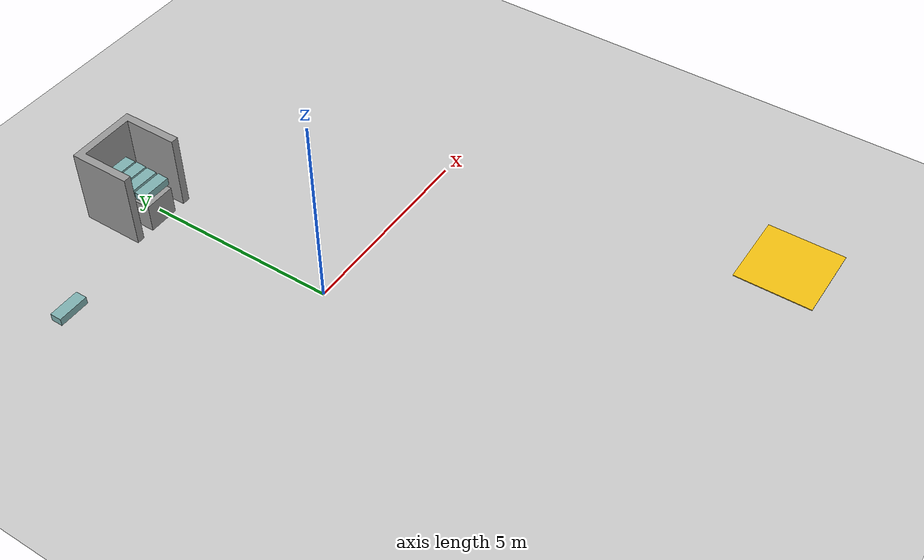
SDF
<sdf version="1.7">
 <world name="default">
  <plugin name="gazebo_link_attacher" filename="libgazebo_link_attacher.so"/>
  <plugin name="gazebo_ros_api_plugin" filename="libgazebo_ros_api_plugin.so"/>
  <plugin name="toggle_link_gravity" filename="libtoggle_link_gravity_plugin.so"/>
  <plugin name="toggle_collision" filename="libtoggle_collision_plugin.so"/>
  <plugin name="gazebo_ros_state" filename="libgazebo_ros_state.so">
   <ros>
    <namespace>/state</namespace>
    <argument>model_states:=model_states</argument>
    <argument>link_states:=link_states</argument>
   </ros>
   <update_rate>1.0</update_rate>
  </plugin>
  <light name="sun" type="directional">
   <pose>0 0 10 0 -0 0</pose>
   <diffuse>0.8 0.8 0.8 1</diffuse>
   <specular>0.2 0.2 0.2 1</specular>
   <attenuation>
    <range>1000</range>
    <constant>0.9</constant>
    <linear>0.01</linear>
    <quadratic>0.001</quadratic>
   </attenuation>
   <direction>-0.5 0.1 -0.9</direction>
   <spot><inner_angle>0</inner_angle><outer_angle>0</outer_angle><falloff>0</falloff></spot>
  </light>
  <model name="ground_plane">
   <static>1</static>
   <link name="link">
    <collision name="collision">
     <geometry><plane><normal>0 0 1</normal><size>100 100</size></plane></geometry>
     <surface>
      <contact><collide_bitmask>65535</collide_bitmask></contact>
      <friction><ode><mu>100</mu><mu2>50</mu2></ode></friction>
     </surface>
    </collision>
    <visual name="visual">
     <cast_shadows>0</cast_shadows>
     <geometry><plane><normal>0 0 1</normal><size>100 100</size></plane></geometry>
     <material>
      <script><uri>file://media/materials/scripts/gazebo.material</uri><name>Gazebo/Grey</name></script>
     </material>
    </visual>
   </link>
  </model>
  <gravity>0 0 -9.8</gravity>
  <magnetic_field>6e-06 2.3e-05 -4.2e-05</magnetic_field>
  <atmosphere type="adiabatic"/>
  <physics type="ode">
   <max_step_size>0.001</max_step_size>
   <real_time_factor>1</real_time_factor>
   <real_time_update_rate>1000</real_time_update_rate>
  </physics>
  <scene><ambient>0.4 0.4 0.4 1</ambient><background>0.7 0.7 0.7 1</background><shadows>1</shadows></scene>
  <audio><device>default</device></audio>
  <spherical_coordinates>
   <surface_model>EARTH_WGS84</surface_model>
   <latitude_deg>0</latitude_deg>
   <longitude_deg>0</longitude_deg>
   <elevation>0</elevation>
   <heading_deg>0</heading_deg>
  </spherical_coordinates>
  <model name="target_plane">
   <link name="link_0">
    <inertial>
     <mass>0.0753756</mass>
     <inertia>
      <ixx>0.0242871</ixx>
      <ixy>0</ixy>
      <ixz>0</ixz>
      <iyy>0.0244094</iyy>
      <iyz>0</iyz>
      <izz>0.0486918</izz>
     </inertia>
    </inertial>
    <visual name="visual">
     <geometry><box><size>1.97121 1.96626 0.019484</size></box></geometry>
     <material>
      <lighting>1</lighting>
      <script><uri>file://media/materials/scripts/gazebo.material</uri><name>Gazebo/Grey</name></script>
      <shader type="pixel"><normal_map>__default__</normal_map></shader>
      <ambient>0.961 0.761 0.067 1</ambient>
      <diffuse>0.961 0.761 0.067 1</diffuse>
      <specular>0.961 0.761 0.067 1</specular>
      <emissive>0.961 0.761 0.067 1</emissive>
     </material>
    </visual>
    <collision name="collision">
     <geometry><box><size>1.97121 1.96626 0.019484</size></box></geometry>
     <surface>
      <friction>
       <ode><mu>1</mu><mu2>1</mu2><fdir1>0 0 0</fdir1><slip1>0</slip1><slip2>0</slip2></ode>
       <torsional>
        <coefficient>1</coefficient>
        <patch_radius>0</patch_radius>
        <surface_radius>0</surface_radius>
        <use_patch_radius>1</use_patch_radius>
        <ode><slip>0</slip></ode>
       </torsional>
      </friction>
      <bounce><restitution_coefficient>0</restitution_coefficient><threshold>1e+06</threshold></bounce>
      <contact>
       <collide_without_contact>0</collide_without_contact>
       <collide_without_contact_bitmask>1</collide_without_contact_bitmask>
       <collide_bitmask>1</collide_bitmask>
       <ode>
        <soft_cfm>0</soft_cfm>
        <soft_erp>0.2</soft_erp>
        <kp>1e+13</kp>
        <kd>1</kd>
        <max_vel>0.01</max_vel>
        <min_depth>0</min_depth>
       </ode>
       <bullet>
        <split_impulse>1</split_impulse>
        <split_impulse_penetration_threshold>-0.01</split_impulse_penetration_threshold>
        <soft_cfm>0</soft_cfm>
        <soft_erp>0.2</soft_erp>
        <kp>1e+13</kp>
        <kd>1</kd>
       </bullet>
      </contact>
     </surface>
    </collision>
   </link>
   <static>1</static>
   <pose>6.58171 -8.56484 0.134058 0 -0 0</pose>
  </model>
  <model name="pacco">
   <link name="link_1">
    <inertial>
     <mass>1</mass>
     <inertia>
      <ixx>0.166667</ixx>
      <ixy>0</ixy>
      <ixz>0</ixz>
      <iyy>0.166667</iyy>
      <iyz>0</iyz>
      <izz>0.166667</izz>
     </inertia>
    </inertial>
    <visual name="visual">
     <geometry>
      <mesh>
       <uri>/ros2_ws/install/ur/share/ur/xacro/./Models/package_800x300x200/package.dae</uri>
       <scale>1 1 1</scale>
      </mesh>
     </geometry>
     <material>
      <lighting>1</lighting>
      <script><uri>file://media/materials/scripts/gazebo.material</uri><name>Gazebo/Grey</name></script>
      <shader type="pixel"><normal_map>__default__</normal_map></shader>
      <ambient>0.6 0 0 0</ambient>
      <diffuse>0.5 0.7 0.7 1</diffuse>
      <specular>0.01 0.01 0.01 1</specular>
      <emissive>0 0 0 1</emissive>
     </material>
    </visual>
    <collision name="collision_1">
     <geometry><box><size>0.8 0.3 0.2</size></box></geometry>
     <surface>
      <friction>
       <ode><mu>1</mu><mu2>1</mu2><fdir1>0 0 0</fdir1><slip1>0</slip1><slip2>0</slip2></ode>
       <torsional>
        <coefficient>1</coefficient>
        <patch_radius>0</patch_radius>
        <surface_radius>0</surface_radius>
        <use_patch_radius>1</use_patch_radius>
        <ode><slip>0</slip></ode>
       </torsional>
      </friction>
      <bounce><restitution_coefficient>0</restitution_coefficient><threshold>1e+06</threshold></bounce>
      <contact>
       <collide_without_contact>0</collide_without_contact>
       <collide_without_contact_bitmask>1</collide_without_contact_bitmask>
       <collide_bitmask>1</collide_bitmask>
       <ode>
        <soft_cfm>0</soft_cfm>
        <soft_erp>0.2</soft_erp>
        <kp>1e+13</kp>
        <kd>1</kd>
        <max_vel>0.01</max_vel>
        <min_depth>0</min_depth>
       </ode>
       <bullet>
        <split_impulse>1</split_impulse>
        <split_impulse_penetration_threshold>-0.01</split_impulse_penetration_threshold>
        <soft_cfm>0</soft_cfm>
        <soft_erp>0.2</soft_erp>
        <kp>1e+13</kp>
        <kd>1</kd>
       </bullet>
      </contact>
     </surface>
    </collision>
   </link>
   <static>0</static>
   <pose>-0.24047 5.20052 0.984316 1e-06 -8e-06 -0.015905</pose>
  </model>
  <model name="pacco_clone">
   <link name="link_1">
    <inertial>
     <mass>1</mass>
     <inertia>
      <ixx>0.166667</ixx>
      <ixy>0</ixy>
      <ixz>0</ixz>
      <iyy>0.166667</iyy>
      <iyz>0</iyz>
      <izz>0.166667</izz>
     </inertia>
    </inertial>
    <visual name="visual">
     <geometry>
      <mesh>
       <uri>/ros2_ws/install/ur/share/ur/xacro/./Models/package_800x300x200/package.dae</uri>
       <scale>1 1 1</scale>
      </mesh>
     </geometry>
     <material>
      <lighting>1</lighting>
      <script><uri>file://media/materials/scripts/gazebo.material</uri><name>Gazebo/Grey</name></script>
      <shader type="pixel"><normal_map>__default__</normal_map></shader>
      <ambient>0.6 0 0 0</ambient>
      <diffuse>0.5 0.7 0.7 1</diffuse>
      <specular>0.01 0.01 0.01 1</specular>
      <emissive>0 0 0 1</emissive>
     </material>
    </visual>
    <collision name="collision_1">
     <geometry><box><size>0.8 0.3 0.2</size></box></geometry>
     <surface>
      <friction>
       <ode><mu>1</mu><mu2>1</mu2><fdir1>0 0 0</fdir1><slip1>0</slip1><slip2>0</slip2></ode>
       <torsional>
        <coefficient>1</coefficient>
        <patch_radius>0</patch_radius>
        <surface_radius>0</surface_radius>
        <use_patch_radius>1</use_patch_radius>
        <ode><slip>0</slip></ode>
       </torsional>
      </friction>
      <bounce><restitution_coefficient>0</restitution_coefficient><threshold>1e+06</threshold></bounce>
      <contact>
       <collide_without_contact>0</collide_without_contact>
       <collide_without_contact_bitmask>1</collide_without_contact_bitmask>
       <collide_bitmask>1</collide_bitmask>
       <ode>
        <soft_cfm>0</soft_cfm>
        <soft_erp>0.2</soft_erp>
        <kp>1e+13</kp>
        <kd>1</kd>
        <max_vel>0.01</max_vel>
        <min_depth>0</min_depth>
       </ode>
       <bullet>
        <split_impulse>1</split_impulse>
        <split_impulse_penetration_threshold>-0.01</split_impulse_penetration_threshold>
        <soft_cfm>0</soft_cfm>
        <soft_erp>0.2</soft_erp>
        <kp>1e+13</kp>
        <kd>1</kd>
       </bullet>
      </contact>
     </surface>
    </collision>
   </link>
   <static>0</static>
   <pose>-0.226039 5.5475 0.984317 1e-06 -6e-06 -0.020432</pose>
  </model>
  <model name="pacco_clone_0">
   <link name="link_1">
    <inertial>
     <mass>1</mass>
     <inertia>
      <ixx>0.166667</ixx>
      <ixy>0</ixy>
      <ixz>0</ixz>
      <iyy>0.166667</iyy>
      <iyz>0</iyz>
      <izz>0.166667</izz>
     </inertia>
    </inertial>
    <visual name="visual">
     <geometry>
      <mesh>
       <uri>/ros2_ws/install/ur/share/ur/xacro/./Models/package_800x300x200/package.dae</uri>
       <scale>1 1 1</scale>
      </mesh>
     </geometry>
     <material>
      <lighting>1</lighting>
      <script><uri>file://media/materials/scripts/gazebo.material</uri><name>Gazebo/Grey</name></script>
      <shader type="pixel"><normal_map>__default__</normal_map></shader>
      <ambient>0.6 0 0 0</ambient>
      <diffuse>0.5 0.7 0.7 1</diffuse>
      <specular>0.01 0.01 0.01 1</specular>
      <emissive>0 0 0 1</emissive>
     </material>
    </visual>
    <collision name="collision_1">
     <geometry><box><size>0.8 0.3 0.2</size></box></geometry>
     <surface>
      <friction>
       <ode><mu>1</mu><mu2>1</mu2><fdir1>0 0 0</fdir1><slip1>0</slip1><slip2>0</slip2></ode>
       <torsional>
        <coefficient>1</coefficient>
        <patch_radius>0</patch_radius>
        <surface_radius>0</surface_radius>
        <use_patch_radius>1</use_patch_radius>
        <ode><slip>0</slip></ode>
       </torsional>
      </friction>
      <bounce><restitution_coefficient>0</restitution_coefficient><threshold>1e+06</threshold></bounce>
      <contact>
       <collide_without_contact>0</collide_without_contact>
       <collide_without_contact_bitmask>1</collide_without_contact_bitmask>
       <collide_bitmask>1</collide_bitmask>
       <ode>
        <soft_cfm>0</soft_cfm>
        <soft_erp>0.2</soft_erp>
        <kp>1e+13</kp>
        <kd>1</kd>
        <max_vel>0.01</max_vel>
        <min_depth>0</min_depth>
       </ode>
       <bullet>
        <split_impulse>1</split_impulse>
        <split_impulse_penetration_threshold>-0.01</split_impulse_penetration_threshold>
        <soft_cfm>0</soft_cfm>
        <soft_erp>0.2</soft_erp>
        <kp>1e+13</kp>
        <kd>1</kd>
       </bullet>
      </contact>
     </surface>
    </collision>
   </link>
   <static>0</static>
   <pose>-0.231972 5.89531 0.984318 -1e-06 1e-06 -0.022243</pose>
  </model>
  <model name="pacco_clone_1">
   <link name="link_1">
    <inertial>
     <mass>1</mass>
     <inertia>
      <ixx>0.166667</ixx>
      <ixy>0</ixy>
      <ixz>0</ixz>
      <iyy>0.166667</iyy>
      <iyz>0</iyz>
      <izz>0.166667</izz>
     </inertia>
    </inertial>
    <visual name="visual">
     <geometry>
      <mesh>
       <uri>/ros2_ws/install/ur/share/ur/xacro/./Models/package_800x300x200/package.dae</uri>
       <scale>1 1 1</scale>
      </mesh>
     </geometry>
     <material>
      <lighting>1</lighting>
      <script><uri>file://media/materials/scripts/gazebo.material</uri><name>Gazebo/Grey</name></script>
      <shader type="pixel"><normal_map>__default__</normal_map></shader>
      <ambient>0.6 0 0 0</ambient>
      <diffuse>0.5 0.7 0.7 1</diffuse>
      <specular>0.01 0.01 0.01 1</specular>
      <emissive>0 0 0 1</emissive>
     </material>
    </visual>
    <collision name="collision_1">
     <geometry><box><size>0.8 0.3 0.2</size></box></geometry>
     <surface>
      <friction>
       <ode><mu>1</mu><mu2>1</mu2><fdir1>0 0 0</fdir1><slip1>0</slip1><slip2>0</slip2></ode>
       <torsional>
        <coefficient>1</coefficient>
        <patch_radius>0</patch_radius>
        <surface_radius>0</surface_radius>
        <use_patch_radius>1</use_patch_radius>
        <ode><slip>0</slip></ode>
       </torsional>
      </friction>
      <bounce><restitution_coefficient>0</restitution_coefficient><threshold>1e+06</threshold></bounce>
      <contact>
       <collide_without_contact>0</collide_without_contact>
       <collide_without_contact_bitmask>1</collide_without_contact_bitmask>
       <collide_bitmask>1</collide_bitmask>
       <ode>
        <soft_cfm>0</soft_cfm>
        <soft_erp>0.2</soft_erp>
        <kp>1e+13</kp>
        <kd>1</kd>
        <max_vel>0.01</max_vel>
        <min_depth>0</min_depth>
       </ode>
       <bullet>
        <split_impulse>1</split_impulse>
        <split_impulse_penetration_threshold>-0.01</split_impulse_penetration_threshold>
        <soft_cfm>0</soft_cfm>
        <soft_erp>0.2</soft_erp>
        <kp>1e+13</kp>
        <kd>1</kd>
       </bullet>
      </contact>
     </surface>
    </collision>
   </link>
   <static>0</static>
   <pose>-0.241949 4.83685 0.984316 1e-06 -7e-06 -0.015858</pose>
  </model>
  <model name="pacco_clone_2">
   <link name="link_1">
    <inertial>
     <mass>1</mass>
     <inertia>
      <ixx>0.166667</ixx>
      <ixy>0</ixy>
      <ixz>0</ixz>
      <iyy>0.166667</iyy>
      <iyz>0</iyz>
      <izz>0.166667</izz>
     </inertia>
    </inertial>
    <visual name="visual">
     <geometry>
      <mesh>
       <uri>/ros2_ws/install/ur/share/ur/xacro/./Models/package_800x300x200/package.dae</uri>
       <scale>1 1 1</scale>
      </mesh>
     </geometry>
     <material>
      <lighting>1</lighting>
      <script><uri>file://media/materials/scripts/gazebo.material</uri><name>Gazebo/Grey</name></script>
      <shader type="pixel"><normal_map>__default__</normal_map></shader>
      <ambient>0.6 0 0 0</ambient>
      <diffuse>0.5 0.7 0.7 1</diffuse>
      <specular>0.01 0.01 0.01 1</specular>
      <emissive>0 0 0 1</emissive>
     </material>
    </visual>
    <collision name="collision_1">
     <geometry><box><size>0.8 0.3 0.2</size></box></geometry>
     <surface>
      <friction>
       <ode><mu>1</mu><mu2>1</mu2><fdir1>0 0 0</fdir1><slip1>0</slip1><slip2>0</slip2></ode>
       <torsional>
        <coefficient>1</coefficient>
        <patch_radius>0</patch_radius>
        <surface_radius>0</surface_radius>
        <use_patch_radius>1</use_patch_radius>
        <ode><slip>0</slip></ode>
       </torsional>
      </friction>
      <bounce><restitution_coefficient>0</restitution_coefficient><threshold>1e+06</threshold></bounce>
      <contact>
       <collide_without_contact>0</collide_without_contact>
       <collide_without_contact_bitmask>1</collide_without_contact_bitmask>
       <collide_bitmask>1</collide_bitmask>
       <ode>
        <soft_cfm>0</soft_cfm>
        <soft_erp>0.2</soft_erp>
        <kp>1e+13</kp>
        <kd>1</kd>
        <max_vel>0.01</max_vel>
        <min_depth>0</min_depth>
       </ode>
       <bullet>
        <split_impulse>1</split_impulse>
        <split_impulse_penetration_threshold>-0.01</split_impulse_penetration_threshold>
        <soft_cfm>0</soft_cfm>
        <soft_erp>0.2</soft_erp>
        <kp>1e+13</kp>
        <kd>1</kd>
       </bullet>
      </contact>
     </surface>
    </collision>
   </link>
   <static>0</static>
   <pose>-3.73271 4.23247 0.364265 1e-05 -6e-06 0.000377</pose>
  </model>
  <model name="muraUse1">
   <link name="link_0">
    <inertial>
     <mass>100</mass>
     <inertia><ixx>0</ixx><ixy>0</ixy><ixz>0</ixz><iyy>0</iyy><iyz>0</iyz><izz>0</izz></inertia>
    </inertial>
    <pose>0 0 0 0 0 -1.57075</pose>
    <visual name="visual">
     <geometry><mesh><uri>/ros2_ws/assets/usecase1(mura+pallet).stl</uri><scale>1 1 1</scale></mesh></geometry>
     <material>
      <lighting>1</lighting>
      <script><uri>file://media/materials/scripts/gazebo.material</uri><name>Gazebo/Grey</name></script>
      <shader type="pixel"><normal_map>__default__</normal_map></shader>
     </material>
    </visual>
    <collision name="collision">
     <geometry><mesh><uri>/ros2_ws/assets/usecase1(mura+pallet).stl</uri><scale>1 1 1</scale></mesh></geometry>
     <surface>
      <friction>
       <ode><mu>5000</mu><mu2>5000</mu2><fdir1>0 0 0</fdir1><slip1>0</slip1><slip2>0</slip2></ode>
       <torsional>
        <coefficient>1</coefficient>
        <patch_radius>0</patch_radius>
        <surface_radius>0</surface_radius>
        <use_patch_radius>1</use_patch_radius>
        <ode><slip>0</slip></ode>
       </torsional>
      </friction>
      <bounce><restitution_coefficient>0</restitution_coefficient><threshold>1e+06</threshold></bounce>
      <contact>
       <collide_without_contact>0</collide_without_contact>
       <collide_without_contact_bitmask>1</collide_without_contact_bitmask>
       <collide_bitmask>1</collide_bitmask>
       <ode>
        <soft_cfm>0</soft_cfm>
        <soft_erp>0.2</soft_erp>
        <kp>1e+13</kp>
        <kd>1</kd>
        <max_vel>0.01</max_vel>
        <min_depth>0</min_depth>
       </ode>
       <bullet>
        <split_impulse>1</split_impulse>
        <split_impulse_penetration_threshold>-0.01</split_impulse_penetration_threshold>
        <soft_cfm>0</soft_cfm>
        <soft_erp>0.2</soft_erp>
        <kp>1e+13</kp>
        <kd>1</kd>
       </bullet>
      </contact>
     </surface>
    </collision>
   </link>
   <static>1</static>
   <pose>-0.235411 6.15644 1.00132 -1e-06 3e-06 0.002576</pose>
  </model>
 </world>
</sdf>
